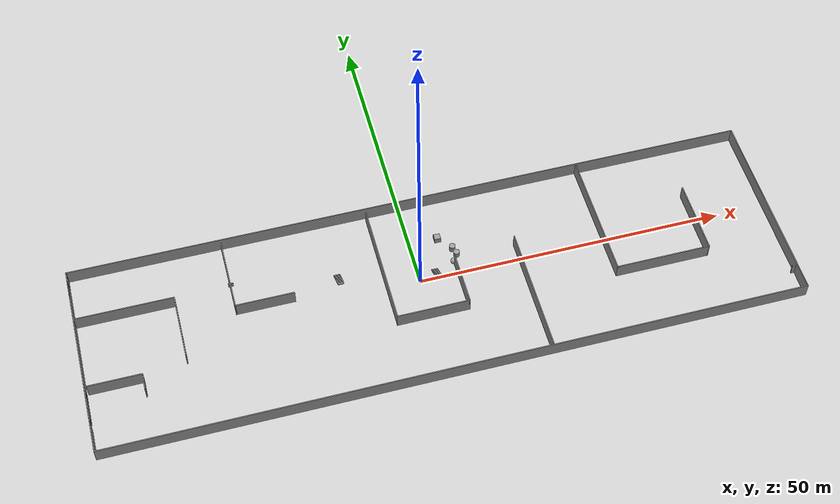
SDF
<sdf version="1.7">
 <world name="default">
  <light name="sun" type="directional">
   <pose>0 0 10 0 -0 0</pose>
   <diffuse>0.8 0.8 0.8 1</diffuse>
   <specular>0.2 0.2 0.2 1</specular>
   <attenuation>
    <range>1000</range>
    <constant>0.9</constant>
    <linear>0.01</linear>
    <quadratic>0.001</quadratic>
   </attenuation>
   <direction>-0.5 0.1 -0.9</direction>
   <spot><inner_angle>0</inner_angle><outer_angle>0</outer_angle><falloff>0</falloff></spot>
  </light>
  <model name="ground_plane">
   <static>1</static>
   <link name="link">
    <collision name="collision">
     <geometry><plane><normal>0 0 1</normal><size>100 100</size></plane></geometry>
     <surface>
      <contact><collide_bitmask>65535</collide_bitmask></contact>
      <friction><ode><mu>100</mu><mu2>50</mu2></ode></friction>
     </surface>
    </collision>
    <visual name="visual">
     <cast_shadows>0</cast_shadows>
     <geometry><plane><normal>0 0 1</normal><size>100 100</size></plane></geometry>
     <material>
      <script><uri>file://media/materials/scripts/gazebo.material</uri><name>Gazebo/Grey</name></script>
     </material>
    </visual>
   </link>
  </model>
  <gravity>0 0 -9.8</gravity>
  <magnetic_field>6e-06 2.3e-05 -4.2e-05</magnetic_field>
  <atmosphere type="adiabatic"/>
  <physics type="ode">
   <max_step_size>0.001</max_step_size>
   <real_time_factor>1</real_time_factor>
   <real_time_update_rate>1000</real_time_update_rate>
  </physics>
  <scene><ambient>0.4 0.4 0.4 1</ambient><background>0.7 0.7 0.7 1</background><shadows>1</shadows></scene>
  <spherical_coordinates>
   <surface_model>EARTH_WGS84</surface_model>
   <latitude_deg>0</latitude_deg>
   <longitude_deg>0</longitude_deg>
   <elevation>0</elevation>
   <heading_deg>0</heading_deg>
  </spherical_coordinates>
  <model name="room1">
   <pose>1.9848 -1.84188 0 0 -0 0</pose>
   <link name="Door_3">
    <collision name="Door_3_Collision">
     <geometry><box><size>0.9 0.17 2</size></box></geometry>
     <pose>0 0 1 0 -0 0</pose>
    </collision>
    <visual name="Door_3_Visual">
     <pose>0 0 1 0 -0 0</pose>
     <geometry><box><size>0.9 0.17 2</size></box></geometry>
     <material>
      <script><uri>file://media/materials/scripts/gazebo.material</uri><name>Gazebo/Grey</name></script>
     </material>
    </visual>
    <pose>55.6122 -11.8671 0 0 -0 0</pose>
   </link>
   <link name="Stairs_3">
    <visual name="Stairs_3_Visual_0">
     <pose>0.729382 3.42545 0.083333 0 -0 0</pose>
     <geometry><box><size>1 0.233333 0.166667</size></box></geometry>
     <material>
      <script><uri>file://media/materials/scripts/gazebo.material</uri><name>Gazebo/Grey</name></script>
      <ambient>1 1 1 1</ambient>
     </material>
     <meta><layer>0</layer></meta>
    </visual>
    <collision name="Stairs_3_Collision_0">
     <geometry><box><size>1 0.233333 0.166667</size></box></geometry>
     <pose>0.729382 3.42545 0.083333 0 -0 0</pose>
    </collision>
    <visual name="Stairs_3_Visual_1">
     <pose>0.729382 3.19211 0.25 0 -0 0</pose>
     <geometry><box><size>1 0.233333 0.166667</size></box></geometry>
     <material>
      <script><uri>file://media/materials/scripts/gazebo.material</uri><name>Gazebo/Grey</name></script>
      <ambient>1 1 1 1</ambient>
     </material>
     <meta><layer>0</layer></meta>
    </visual>
    <collision name="Stairs_3_Collision_1">
     <geometry><box><size>1 0.233333 0.166667</size></box></geometry>
     <pose>0.729382 3.19211 0.25 0 -0 0</pose>
    </collision>
    <visual name="Stairs_3_Visual_2">
     <pose>0.729382 2.95878 0.416667 0 -0 0</pose>
     <geometry><box><size>1 0.233333 0.166667</size></box></geometry>
     <material>
      <script><uri>file://media/materials/scripts/gazebo.material</uri><name>Gazebo/Grey</name></script>
      <ambient>1 1 1 1</ambient>
     </material>
     <meta><layer>0</layer></meta>
    </visual>
    <collision name="Stairs_3_Collision_2">
     <geometry><box><size>1 0.233333 0.166667</size></box></geometry>
     <pose>0.729382 2.95878 0.416667 0 -0 0</pose>
    </collision>
    <visual name="Stairs_3_Visual_3">
     <pose>0.729382 2.72545 0.583333 0 -0 0</pose>
     <geometry><box><size>1 0.233333 0.166667</size></box></geometry>
     <material>
      <script><uri>file://media/materials/scripts/gazebo.material</uri><name>Gazebo/Grey</name></script>
      <ambient>1 1 1 1</ambient>
     </material>
     <meta><layer>0</layer></meta>
    </visual>
    <collision name="Stairs_3_Collision_3">
     <geometry><box><size>1 0.233333 0.166667</size></box></geometry>
     <pose>0.729382 2.72545 0.583333 0 -0 0</pose>
    </collision>
    <visual name="Stairs_3_Visual_4">
     <pose>0.729382 2.49211 0.75 0 -0 0</pose>
     <geometry><box><size>1 0.233333 0.166667</size></box></geometry>
     <material>
      <script><uri>file://media/materials/scripts/gazebo.material</uri><name>Gazebo/Grey</name></script>
      <ambient>1 1 1 1</ambient>
     </material>
     <meta><layer>0</layer></meta>
    </visual>
    <collision name="Stairs_3_Collision_4">
     <geometry><box><size>1 0.233333 0.166667</size></box></geometry>
     <pose>0.729382 2.49211 0.75 0 -0 0</pose>
    </collision>
    <visual name="Stairs_3_Visual_5">
     <pose>0.729382 2.25878 0.916667 0 -0 0</pose>
     <geometry><box><size>1 0.233333 0.166667</size></box></geometry>
     <material>
      <script><uri>file://media/materials/scripts/gazebo.material</uri><name>Gazebo/Grey</name></script>
      <ambient>1 1 1 1</ambient>
     </material>
     <meta><layer>0</layer></meta>
    </visual>
    <collision name="Stairs_3_Collision_5">
     <geometry><box><size>1 0.233333 0.166667</size></box></geometry>
     <pose>0.729382 2.25878 0.916667 0 -0 0</pose>
    </collision>
    <visual name="Stairs_3_Visual_6">
     <pose>0.729382 2.02545 1.08333 0 -0 0</pose>
     <geometry><box><size>1 0.233333 0.166667</size></box></geometry>
     <material>
      <script><uri>file://media/materials/scripts/gazebo.material</uri><name>Gazebo/Grey</name></script>
      <ambient>1 1 1 1</ambient>
     </material>
     <meta><layer>0</layer></meta>
    </visual>
    <collision name="Stairs_3_Collision_6">
     <geometry><box><size>1 0.233333 0.166667</size></box></geometry>
     <pose>0.729382 2.02545 1.08333 0 -0 0</pose>
    </collision>
    <visual name="Stairs_3_Visual_7">
     <pose>0.729382 1.79211 1.25 0 -0 0</pose>
     <geometry><box><size>1 0.233333 0.166667</size></box></geometry>
     <material>
      <script><uri>file://media/materials/scripts/gazebo.material</uri><name>Gazebo/Grey</name></script>
      <ambient>1 1 1 1</ambient>
     </material>
     <meta><layer>0</layer></meta>
    </visual>
    <collision name="Stairs_3_Collision_7">
     <geometry><box><size>1 0.233333 0.166667</size></box></geometry>
     <pose>0.729382 1.79211 1.25 0 -0 0</pose>
    </collision>
    <visual name="Stairs_3_Visual_8">
     <pose>0.729382 1.55878 1.41667 0 -0 0</pose>
     <geometry><box><size>1 0.233333 0.166667</size></box></geometry>
     <material>
      <script><uri>file://media/materials/scripts/gazebo.material</uri><name>Gazebo/Grey</name></script>
      <ambient>1 1 1 1</ambient>
     </material>
     <meta><layer>0</layer></meta>
    </visual>
    <collision name="Stairs_3_Collision_8">
     <geometry><box><size>1 0.233333 0.166667</size></box></geometry>
     <pose>0.729382 1.55878 1.41667 0 -0 0</pose>
    </collision>
    <visual name="Stairs_3_Visual_9">
     <pose>0.729382 1.32545 1.58333 0 -0 0</pose>
     <geometry><box><size>1 0.233333 0.166667</size></box></geometry>
     <material>
      <script><uri>file://media/materials/scripts/gazebo.material</uri><name>Gazebo/Grey</name></script>
      <ambient>1 1 1 1</ambient>
     </material>
     <meta><layer>0</layer></meta>
    </visual>
    <collision name="Stairs_3_Collision_9">
     <geometry><box><size>1 0.233333 0.166667</size></box></geometry>
     <pose>0.729382 1.32545 1.58333 0 -0 0</pose>
    </collision>
    <visual name="Stairs_3_Visual_10">
     <pose>0.729382 1.09211 1.75 0 -0 0</pose>
     <geometry><box><size>1 0.233333 0.166667</size></box></geometry>
     <material>
      <script><uri>file://media/materials/scripts/gazebo.material</uri><name>Gazebo/Grey</name></script>
      <ambient>1 1 1 1</ambient>
     </material>
     <meta><layer>0</layer></meta>
    </visual>
    <collision name="Stairs_3_Collision_10">
     <geometry><box><size>1 0.233333 0.166667</size></box></geometry>
     <pose>0.729382 1.09211 1.75 0 -0 0</pose>
    </collision>
    <visual name="Stairs_3_Visual_11">
     <pose>0.729382 0.85878 1.91667 0 -0 0</pose>
     <geometry><box><size>1 0.233333 0.166667</size></box></geometry>
     <material>
      <script><uri>file://media/materials/scripts/gazebo.material</uri><name>Gazebo/Grey</name></script>
      <ambient>1 1 1 1</ambient>
     </material>
     <meta><layer>0</layer></meta>
    </visual>
    <collision name="Stairs_3_Collision_11">
     <geometry><box><size>1 0.233333 0.166667</size></box></geometry>
     <pose>0.729382 0.85878 1.91667 0 -0 0</pose>
    </collision>
    <visual name="Stairs_3_Visual_12">
     <pose>0.729382 0.625446 2.08333 0 -0 0</pose>
     <geometry><box><size>1 0.233333 0.166667</size></box></geometry>
     <material>
      <script><uri>file://media/materials/scripts/gazebo.material</uri><name>Gazebo/Grey</name></script>
      <ambient>1 1 1 1</ambient>
     </material>
     <meta><layer>0</layer></meta>
    </visual>
    <collision name="Stairs_3_Collision_12">
     <geometry><box><size>1 0.233333 0.166667</size></box></geometry>
     <pose>0.729382 0.625446 2.08333 0 -0 0</pose>
    </collision>
    <visual name="Stairs_3_Visual_13">
     <pose>0.729382 0.392113 2.25 0 -0 0</pose>
     <geometry><box><size>1 0.233333 0.166667</size></box></geometry>
     <material>
      <script><uri>file://media/materials/scripts/gazebo.material</uri><name>Gazebo/Grey</name></script>
      <ambient>1 1 1 1</ambient>
     </material>
     <meta><layer>0</layer></meta>
    </visual>
    <collision name="Stairs_3_Collision_13">
     <geometry><box><size>1 0.233333 0.166667</size></box></geometry>
     <pose>0.729382 0.392113 2.25 0 -0 0</pose>
    </collision>
    <visual name="Stairs_3_Visual_14">
     <pose>0.729382 0.15878 2.41667 0 -0 0</pose>
     <geometry><box><size>1 0.233333 0.166667</size></box></geometry>
     <material>
      <script><uri>file://media/materials/scripts/gazebo.material</uri><name>Gazebo/Grey</name></script>
      <ambient>1 1 1 1</ambient>
     </material>
     <meta><layer>0</layer></meta>
    </visual>
    <collision name="Stairs_3_Collision_14">
     <geometry><box><size>1 0.233333 0.166667</size></box></geometry>
     <pose>0.729382 0.15878 2.41667 0 -0 0</pose>
    </collision>
   </link>
   <link name="Stairs_4">
    <visual name="Stairs_4_Visual_0">
     <pose>-14.5295 6.37878 0.083333 0 -0 0</pose>
     <geometry><box><size>1 0.233333 0.166667</size></box></geometry>
     <material>
      <script><uri>file://media/materials/scripts/gazebo.material</uri><name>Gazebo/Grey</name></script>
      <ambient>1 1 1 1</ambient>
     </material>
     <meta><layer>0</layer></meta>
    </visual>
    <collision name="Stairs_4_Collision_0">
     <geometry><box><size>1 0.233333 0.166667</size></box></geometry>
     <pose>-14.5295 6.37878 0.083333 0 -0 0</pose>
    </collision>
    <visual name="Stairs_4_Visual_1">
     <pose>-14.5295 6.14545 0.25 0 -0 0</pose>
     <geometry><box><size>1 0.233333 0.166667</size></box></geometry>
     <material>
      <script><uri>file://media/materials/scripts/gazebo.material</uri><name>Gazebo/Grey</name></script>
      <ambient>1 1 1 1</ambient>
     </material>
     <meta><layer>0</layer></meta>
    </visual>
    <collision name="Stairs_4_Collision_1">
     <geometry><box><size>1 0.233333 0.166667</size></box></geometry>
     <pose>-14.5295 6.14545 0.25 0 -0 0</pose>
    </collision>
    <visual name="Stairs_4_Visual_2">
     <pose>-14.5295 5.91212 0.416667 0 -0 0</pose>
     <geometry><box><size>1 0.233333 0.166667</size></box></geometry>
     <material>
      <script><uri>file://media/materials/scripts/gazebo.material</uri><name>Gazebo/Grey</name></script>
      <ambient>1 1 1 1</ambient>
     </material>
     <meta><layer>0</layer></meta>
    </visual>
    <collision name="Stairs_4_Collision_2">
     <geometry><box><size>1 0.233333 0.166667</size></box></geometry>
     <pose>-14.5295 5.91212 0.416667 0 -0 0</pose>
    </collision>
    <visual name="Stairs_4_Visual_3">
     <pose>-14.5295 5.67879 0.583333 0 -0 0</pose>
     <geometry><box><size>1 0.233333 0.166667</size></box></geometry>
     <material>
      <script><uri>file://media/materials/scripts/gazebo.material</uri><name>Gazebo/Grey</name></script>
      <ambient>1 1 1 1</ambient>
     </material>
     <meta><layer>0</layer></meta>
    </visual>
    <collision name="Stairs_4_Collision_3">
     <geometry><box><size>1 0.233333 0.166667</size></box></geometry>
     <pose>-14.5295 5.67879 0.583333 0 -0 0</pose>
    </collision>
    <visual name="Stairs_4_Visual_4">
     <pose>-14.5295 5.44545 0.75 0 -0 0</pose>
     <geometry><box><size>1 0.233333 0.166667</size></box></geometry>
     <material>
      <script><uri>file://media/materials/scripts/gazebo.material</uri><name>Gazebo/Grey</name></script>
      <ambient>1 1 1 1</ambient>
     </material>
     <meta><layer>0</layer></meta>
    </visual>
    <collision name="Stairs_4_Collision_4">
     <geometry><box><size>1 0.233333 0.166667</size></box></geometry>
     <pose>-14.5295 5.44545 0.75 0 -0 0</pose>
    </collision>
    <visual name="Stairs_4_Visual_5">
     <pose>-14.5295 5.21212 0.916667 0 -0 0</pose>
     <geometry><box><size>1 0.233333 0.166667</size></box></geometry>
     <material>
      <script><uri>file://media/materials/scripts/gazebo.material</uri><name>Gazebo/Grey</name></script>
      <ambient>1 1 1 1</ambient>
     </material>
     <meta><layer>0</layer></meta>
    </visual>
    <collision name="Stairs_4_Collision_5">
     <geometry><box><size>1 0.233333 0.166667</size></box></geometry>
     <pose>-14.5295 5.21212 0.916667 0 -0 0</pose>
    </collision>
    <visual name="Stairs_4_Visual_6">
     <pose>-14.5295 4.97879 1.08333 0 -0 0</pose>
     <geometry><box><size>1 0.233333 0.166667</size></box></geometry>
     <material>
      <script><uri>file://media/materials/scripts/gazebo.material</uri><name>Gazebo/Grey</name></script>
      <ambient>1 1 1 1</ambient>
     </material>
     <meta><layer>0</layer></meta>
    </visual>
    <collision name="Stairs_4_Collision_6">
     <geometry><box><size>1 0.233333 0.166667</size></box></geometry>
     <pose>-14.5295 4.97879 1.08333 0 -0 0</pose>
    </collision>
    <visual name="Stairs_4_Visual_7">
     <pose>-14.5295 4.74545 1.25 0 -0 0</pose>
     <geometry><box><size>1 0.233333 0.166667</size></box></geometry>
     <material>
      <script><uri>file://media/materials/scripts/gazebo.material</uri><name>Gazebo/Grey</name></script>
      <ambient>1 1 1 1</ambient>
     </material>
     <meta><layer>0</layer></meta>
    </visual>
    <collision name="Stairs_4_Collision_7">
     <geometry><box><size>1 0.233333 0.166667</size></box></geometry>
     <pose>-14.5295 4.74545 1.25 0 -0 0</pose>
    </collision>
    <visual name="Stairs_4_Visual_8">
     <pose>-14.5295 4.51212 1.41667 0 -0 0</pose>
     <geometry><box><size>1 0.233333 0.166667</size></box></geometry>
     <material>
      <script><uri>file://media/materials/scripts/gazebo.material</uri><name>Gazebo/Grey</name></script>
      <ambient>1 1 1 1</ambient>
     </material>
     <meta><layer>0</layer></meta>
    </visual>
    <collision name="Stairs_4_Collision_8">
     <geometry><box><size>1 0.233333 0.166667</size></box></geometry>
     <pose>-14.5295 4.51212 1.41667 0 -0 0</pose>
    </collision>
    <visual name="Stairs_4_Visual_9">
     <pose>-14.5295 4.27879 1.58333 0 -0 0</pose>
     <geometry><box><size>1 0.233333 0.166667</size></box></geometry>
     <material>
      <script><uri>file://media/materials/scripts/gazebo.material</uri><name>Gazebo/Grey</name></script>
      <ambient>1 1 1 1</ambient>
     </material>
     <meta><layer>0</layer></meta>
    </visual>
    <collision name="Stairs_4_Collision_9">
     <geometry><box><size>1 0.233333 0.166667</size></box></geometry>
     <pose>-14.5295 4.27879 1.58333 0 -0 0</pose>
    </collision>
    <visual name="Stairs_4_Visual_10">
     <pose>-14.5295 4.04545 1.75 0 -0 0</pose>
     <geometry><box><size>1 0.233333 0.166667</size></box></geometry>
     <material>
      <script><uri>file://media/materials/scripts/gazebo.material</uri><name>Gazebo/Grey</name></script>
      <ambient>1 1 1 1</ambient>
     </material>
     <meta><layer>0</layer></meta>
    </visual>
    <collision name="Stairs_4_Collision_10">
     <geometry><box><size>1 0.233333 0.166667</size></box></geometry>
     <pose>-14.5295 4.04545 1.75 0 -0 0</pose>
    </collision>
    <visual name="Stairs_4_Visual_11">
     <pose>-14.5295 3.81212 1.91667 0 -0 0</pose>
     <geometry><box><size>1 0.233333 0.166667</size></box></geometry>
     <material>
      <script><uri>file://media/materials/scripts/gazebo.material</uri><name>Gazebo/Grey</name></script>
      <ambient>1 1 1 1</ambient>
     </material>
     <meta><layer>0</layer></meta>
    </visual>
    <collision name="Stairs_4_Collision_11">
     <geometry><box><size>1 0.233333 0.166667</size></box></geometry>
     <pose>-14.5295 3.81212 1.91667 0 -0 0</pose>
    </collision>
    <visual name="Stairs_4_Visual_12">
     <pose>-14.5295 3.57878 2.08333 0 -0 0</pose>
     <geometry><box><size>1 0.233333 0.166667</size></box></geometry>
     <material>
      <script><uri>file://media/materials/scripts/gazebo.material</uri><name>Gazebo/Grey</name></script>
      <ambient>1 1 1 1</ambient>
     </material>
     <meta><layer>0</layer></meta>
    </visual>
    <collision name="Stairs_4_Collision_12">
     <geometry><box><size>1 0.233333 0.166667</size></box></geometry>
     <pose>-14.5295 3.57878 2.08333 0 -0 0</pose>
    </collision>
    <visual name="Stairs_4_Visual_13">
     <pose>-14.5295 3.34545 2.25 0 -0 0</pose>
     <geometry><box><size>1 0.233333 0.166667</size></box></geometry>
     <material>
      <script><uri>file://media/materials/scripts/gazebo.material</uri><name>Gazebo/Grey</name></script>
      <ambient>1 1 1 1</ambient>
     </material>
     <meta><layer>0</layer></meta>
    </visual>
    <collision name="Stairs_4_Collision_13">
     <geometry><box><size>1 0.233333 0.166667</size></box></geometry>
     <pose>-14.5295 3.34545 2.25 0 -0 0</pose>
    </collision>
    <visual name="Stairs_4_Visual_14">
     <pose>-14.5295 3.11212 2.41667 0 -0 0</pose>
     <geometry><box><size>1 0.233333 0.166667</size></box></geometry>
     <material>
      <script><uri>file://media/materials/scripts/gazebo.material</uri><name>Gazebo/Grey</name></script>
      <ambient>1 1 1 1</ambient>
     </material>
     <meta><layer>0</layer></meta>
    </visual>
    <collision name="Stairs_4_Collision_14">
     <geometry><box><size>1 0.233333 0.166667</size></box></geometry>
     <pose>-14.5295 3.11212 2.41667 0 -0 0</pose>
    </collision>
   </link>
   <link name="Wall_11">
    <pose>-55.8 -0.875 0 0 -0 -1.5708</pose>
    <visual name="Wall_11_Visual_0">
     <pose>-5.26429 0 1.25 0 -0 0</pose>
     <geometry><box><size>20.4714 0.15 2.5</size></box></geometry>
     <material>
      <script><uri>file://media/materials/scripts/gazebo.material</uri><name>Gazebo/Grey</name></script>
      <ambient>1 1 1 1</ambient>
     </material>
     <meta><layer>0</layer></meta>
    </visual>
    <collision name="Wall_11_Collision_0">
     <geometry><box><size>20.4714 0.15 2.5</size></box></geometry>
     <pose>-5.26429 0 1.25 0 -0 0</pose>
    </collision>
    <visual name="Wall_11_Visual_1">
     <pose>13.0403 0 1.25 0 -0 0</pose>
     <geometry><box><size>4.91932 0.15 2.5</size></box></geometry>
     <material>
      <script><uri>file://media/materials/scripts/gazebo.material</uri><name>Gazebo/Grey</name></script>
      <ambient>1 1 1 1</ambient>
     </material>
     <meta><layer>0</layer></meta>
    </visual>
    <collision name="Wall_11_Collision_1">
     <geometry><box><size>4.91932 0.15 2.5</size></box></geometry>
     <pose>13.0403 0 1.25 0 -0 0</pose>
    </collision>
    <visual name="Wall_11_Visual_2">
     <pose>7.32605 0 0.25 0 -0 0</pose>
     <geometry><box><size>4.70926 0.15 0.5</size></box></geometry>
     <material>
      <script><uri>file://media/materials/scripts/gazebo.material</uri><name>Gazebo/Grey</name></script>
      <ambient>1 1 1 1</ambient>
     </material>
     <meta><layer>0</layer></meta>
    </visual>
    <collision name="Wall_11_Collision_2">
     <geometry><box><size>4.70926 0.15 0.5</size></box></geometry>
     <pose>7.32605 0 0.25 0 -0 0</pose>
    </collision>
    <visual name="Wall_11_Visual_3">
     <pose>7.72605 0 1.5 0 -0 0</pose>
     <geometry><box><size>3.90926 0.15 2</size></box></geometry>
     <material>
      <script><uri>file://media/materials/scripts/gazebo.material</uri><name>Gazebo/Grey</name></script>
      <ambient>1 1 1 1</ambient>
     </material>
     <meta><layer>0</layer></meta>
    </visual>
    <collision name="Wall_11_Collision_3">
     <geometry><box><size>3.90926 0.15 2</size></box></geometry>
     <pose>7.72605 0 1.5 0 -0 0</pose>
    </collision>
    <visual name="Wall_11_Visual_4">
     <pose>5.37142 0 1.9 0 -0 0</pose>
     <geometry><box><size>0.8 0.15 1.2</size></box></geometry>
     <material>
      <script><uri>file://media/materials/scripts/gazebo.material</uri><name>Gazebo/Grey</name></script>
      <ambient>1 1 1 1</ambient>
     </material>
     <meta><layer>0</layer></meta>
    </visual>
    <collision name="Wall_11_Collision_4">
     <geometry><box><size>0.8 0.15 1.2</size></box></geometry>
     <pose>5.37142 0 1.9 0 -0 0</pose>
    </collision>
    <visual name="Wall_11_Visual_5">
     <pose>10.1307 0 2.25 0 -0 0</pose>
     <geometry><box><size>0.9 0.15 0.5</size></box></geometry>
     <material>
      <script><uri>file://media/materials/scripts/gazebo.material</uri><name>Gazebo/Grey</name></script>
      <ambient>1 1 1 1</ambient>
     </material>
     <meta><layer>0</layer></meta>
    </visual>
    <collision name="Wall_11_Collision_5">
     <geometry><box><size>0.9 0.15 0.5</size></box></geometry>
     <pose>10.1307 0 2.25 0 -0 0</pose>
    </collision>
   </link>
   <link name="Wall_12">
    <collision name="Wall_12_Collision">
     <geometry><box><size>111.75 0.15 2.5</size></box></geometry>
     <pose>0 0 1.25 0 -0 0</pose>
    </collision>
    <visual name="Wall_12_Visual">
     <pose>0 0 1.25 0 -0 0</pose>
     <geometry><box><size>111.75 0.15 2.5</size></box></geometry>
     <material>
      <script><uri>file://media/materials/scripts/gazebo.material</uri><name>Gazebo/Grey</name></script>
      <ambient>1 1 1 1</ambient>
     </material>
     <meta><layer>0</layer></meta>
    </visual>
    <pose>-1e-06 -16.3 0 0 -0 0</pose>
   </link>
   <link name="Wall_13">
    <collision name="Wall_13_Collision">
     <geometry><box><size>32.75 0.15 2.5</size></box></geometry>
     <pose>0 0 1.25 0 -0 0</pose>
    </collision>
    <visual name="Wall_13_Visual">
     <pose>0 0 1.25 0 -0 0</pose>
     <geometry><box><size>32.75 0.15 2.5</size></box></geometry>
     <material>
      <script><uri>file://media/materials/scripts/gazebo.material</uri><name>Gazebo/Grey</name></script>
      <ambient>1 1 1 1</ambient>
     </material>
     <meta><layer>0</layer></meta>
    </visual>
    <pose>55.8 0 0 0 -0 1.5708</pose>
   </link>
   <link name="Wall_14">
    <collision name="Wall_14_Collision">
     <geometry><box><size>111.75 0.15 2.5</size></box></geometry>
     <pose>0 0 1.25 0 -0 0</pose>
    </collision>
    <visual name="Wall_14_Visual">
     <pose>0 0 1.25 0 -0 0</pose>
     <geometry><box><size>111.75 0.15 2.5</size></box></geometry>
     <material>
      <script><uri>file://media/materials/scripts/gazebo.material</uri><name>Gazebo/Grey</name></script>
      <ambient>1 1 1 1</ambient>
     </material>
     <meta><layer>0</layer></meta>
    </visual>
    <pose>-1e-06 16.3 0 0 -0 3.14159</pose>
   </link>
   <link name="Wall_15">
    <collision name="Wall_15_Collision">
     <geometry><box><size>4.75 0.15 2.5</size></box></geometry>
     <pose>0 0 1.25 0 -0 0</pose>
    </collision>
    <visual name="Wall_15_Visual">
     <pose>0 0 1.25 0 -0 0</pose>
     <geometry><box><size>4.75 0.15 2.5</size></box></geometry>
     <material>
      <script><uri>file://media/materials/scripts/gazebo.material</uri><name>Gazebo/Grey</name></script>
      <ambient>1 1 1 1</ambient>
     </material>
     <meta><layer>0</layer></meta>
    </visual>
    <pose>-55.8 14 0 0 -0 -1.5708</pose>
   </link>
   <link name="Wall_17">
    <collision name="Wall_17_Collision">
     <geometry><box><size>21 0.15 2.5</size></box></geometry>
     <pose>0 0 1.25 0 -0 0</pose>
    </collision>
    <visual name="Wall_17_Visual">
     <pose>0 0 1.25 0 -0 0</pose>
     <geometry><box><size>21 0.15 2.5</size></box></geometry>
     <material>
      <script><uri>file://media/materials/scripts/gazebo.material</uri><name>Gazebo/Grey</name></script>
      <ambient>1 1 1 1</ambient>
     </material>
     <meta><layer>0</layer></meta>
    </visual>
    <pose>14.2655 -5.67955 0 0 -0 -1.5708</pose>
   </link>
   <link name="Wall_19">
    <collision name="Wall_19_Collision">
     <geometry><box><size>15.75 0.15 2.5</size></box></geometry>
     <pose>0 0 1.25 0 -0 0</pose>
    </collision>
    <visual name="Wall_19_Visual">
     <pose>0 0 1.25 0 -0 0</pose>
     <geometry><box><size>15.75 0.15 2.5</size></box></geometry>
     <material>
      <script><uri>file://media/materials/scripts/gazebo.material</uri><name>Gazebo/Grey</name></script>
      <ambient>1 1 1 1</ambient>
     </material>
     <meta><layer>0</layer></meta>
    </visual>
    <pose>-47.9532 7.32962 0 0 -0 0</pose>
   </link>
   <link name="Wall_20">
    <collision name="Wall_20_Collision">
     <geometry><box><size>11 0.15 2.5</size></box></geometry>
     <pose>0 0 1.25 0 -0 0</pose>
    </collision>
    <visual name="Wall_20_Visual">
     <pose>0 0 1.25 0 -0 0</pose>
     <geometry><box><size>11 0.15 2.5</size></box></geometry>
     <material>
      <script><uri>file://media/materials/scripts/gazebo.material</uri><name>Gazebo/Grey</name></script>
      <ambient>1 1 1 1</ambient>
     </material>
     <meta><layer>0</layer></meta>
    </visual>
    <pose>-40.1532 1.90462 0 0 -0 -1.5708</pose>
   </link>
   <link name="Wall_22">
    <collision name="Wall_22_Collision">
     <geometry><box><size>12.5 0.15 2.5</size></box></geometry>
     <pose>0 0 1.25 0 -0 0</pose>
    </collision>
    <visual name="Wall_22_Visual">
     <pose>0 0 1.25 0 -0 0</pose>
     <geometry><box><size>12.5 0.15 2.5</size></box></geometry>
     <material>
      <script><uri>file://media/materials/scripts/gazebo.material</uri><name>Gazebo/Grey</name></script>
      <ambient>1 1 1 1</ambient>
     </material>
     <meta><layer>0</layer></meta>
    </visual>
    <pose>-31.2651 9.52241 0 0 -0 -1.5708</pose>
   </link>
   <link name="Wall_23">
    <collision name="Wall_23_Collision">
     <geometry><box><size>9.5 0.15 2.5</size></box></geometry>
     <pose>0 0 1.25 0 -0 0</pose>
    </collision>
    <visual name="Wall_23_Visual">
     <pose>0 0 1.25 0 -0 0</pose>
     <geometry><box><size>9.5 0.15 2.5</size></box></geometry>
     <material>
      <script><uri>file://media/materials/scripts/gazebo.material</uri><name>Gazebo/Grey</name></script>
      <ambient>1 1 1 1</ambient>
     </material>
     <meta><layer>0</layer></meta>
    </visual>
    <pose>-26.5901 3.34741 0 0 -0 0</pose>
   </link>
   <link name="Wall_25">
    <collision name="Wall_25_Collision">
     <geometry><box><size>8.5 0.15 2.5</size></box></geometry>
     <pose>0 0 1.25 0 -0 0</pose>
    </collision>
    <visual name="Wall_25_Visual">
     <pose>0 0 1.25 0 -0 0</pose>
     <geometry><box><size>8.5 0.15 2.5</size></box></geometry>
     <material>
      <script><uri>file://media/materials/scripts/gazebo.material</uri><name>Gazebo/Grey</name></script>
      <ambient>1 1 1 1</ambient>
     </material>
     <meta><layer>0</layer></meta>
    </visual>
    <pose>-51.209 -5.09901 0 0 -0 0</pose>
   </link>
   <link name="Wall_26">
    <collision name="Wall_26_Collision">
     <geometry><box><size>2.75 0.15 2.5</size></box></geometry>
     <pose>0 0 1.25 0 -0 0</pose>
    </collision>
    <visual name="Wall_26_Visual">
     <pose>0 0 1.25 0 -0 0</pose>
     <geometry><box><size>2.75 0.15 2.5</size></box></geometry>
     <material>
      <script><uri>file://media/materials/scripts/gazebo.material</uri><name>Gazebo/Grey</name></script>
      <ambient>1 1 1 1</ambient>
     </material>
     <meta><layer>0</layer></meta>
    </visual>
    <pose>-47.034 -6.39901 0 0 -0 -1.5708</pose>
   </link>
   <link name="Wall_28">
    <collision name="Wall_28_Collision">
     <geometry><box><size>20.75 0.15 2.5</size></box></geometry>
     <pose>0 0 1.25 0 -0 0</pose>
    </collision>
    <visual name="Wall_28_Visual">
     <pose>0 0 1.25 0 -0 0</pose>
     <geometry><box><size>20.75 0.15 2.5</size></box></geometry>
     <material>
      <script><uri>file://media/materials/scripts/gazebo.material</uri><name>Gazebo/Grey</name></script>
      <ambient>1 1 1 1</ambient>
     </material>
     <meta><layer>0</layer></meta>
    </visual>
    <pose>-7.51535 5.1513 0 0 -0 -1.5708</pose>
   </link>
   <link name="Wall_29">
    <collision name="Wall_29_Collision">
     <geometry><box><size>11.75 0.15 2.5</size></box></geometry>
     <pose>0 0 1.25 0 -0 0</pose>
    </collision>
    <visual name="Wall_29_Visual">
     <pose>0 0 1.25 0 -0 0</pose>
     <geometry><box><size>11.75 0.15 2.5</size></box></geometry>
     <material>
      <script><uri>file://media/materials/scripts/gazebo.material</uri><name>Gazebo/Grey</name></script>
      <ambient>1 1 1 1</ambient>
     </material>
     <meta><layer>0</layer></meta>
    </visual>
    <pose>-1.71535 -5.1487 0 0 -0 0</pose>
   </link>
   <link name="Wall_30">
    <collision name="Wall_30_Collision">
     <geometry><box><size>8.75 0.15 2.5</size></box></geometry>
     <pose>0 0 1.25 0 -0 0</pose>
    </collision>
    <visual name="Wall_30_Visual">
     <pose>0 0 1.25 0 -0 0</pose>
     <geometry><box><size>8.75 0.15 2.5</size></box></geometry>
     <material>
      <script><uri>file://media/materials/scripts/gazebo.material</uri><name>Gazebo/Grey</name></script>
      <ambient>1 1 1 1</ambient>
     </material>
     <meta><layer>0</layer></meta>
    </visual>
    <pose>4.08465 -0.848698 0 0 -0 1.5708</pose>
   </link>
   <link name="Wall_32">
    <collision name="Wall_32_Collision">
     <geometry><box><size>21.5 0.15 2.5</size></box></geometry>
     <pose>0 0 1.25 0 -0 0</pose>
    </collision>
    <visual name="Wall_32_Visual">
     <pose>0 0 1.25 0 -0 0</pose>
     <geometry><box><size>21.5 0.15 2.5</size></box></geometry>
     <material>
      <script><uri>file://media/materials/scripts/gazebo.material</uri><name>Gazebo/Grey</name></script>
      <ambient>1 1 1 1</ambient>
     </material>
     <meta><layer>0</layer></meta>
    </visual>
    <pose>28.2939 5.51464 0 0 -0 -1.5708</pose>
   </link>
   <link name="Wall_33">
    <collision name="Wall_33_Collision">
     <geometry><box><size>15.5 0.15 2.5</size></box></geometry>
     <pose>0 0 1.25 0 -0 0</pose>
    </collision>
    <visual name="Wall_33_Visual">
     <pose>0 0 1.25 0 -0 0</pose>
     <geometry><box><size>15.5 0.15 2.5</size></box></geometry>
     <material>
      <script><uri>file://media/materials/scripts/gazebo.material</uri><name>Gazebo/Grey</name></script>
      <ambient>1 1 1 1</ambient>
     </material>
     <meta><layer>0</layer></meta>
    </visual>
    <pose>35.9689 -5.16036 0 0 -0 0</pose>
   </link>
   <link name="Wall_34">
    <collision name="Wall_34_Collision">
     <geometry><box><size>12.25 0.15 2.5</size></box></geometry>
     <pose>0 0 1.25 0 -0 0</pose>
    </collision>
    <visual name="Wall_34_Visual">
     <pose>0 0 1.25 0 -0 0</pose>
     <geometry><box><size>12.25 0.15 2.5</size></box></geometry>
     <material>
      <script><uri>file://media/materials/scripts/gazebo.material</uri><name>Gazebo/Grey</name></script>
      <ambient>1 1 1 1</ambient>
     </material>
     <meta><layer>0</layer></meta>
    </visual>
    <pose>43.6439 0.889636 0 0 -0 1.5708</pose>
   </link>
   <link name="Window_5">
    <collision name="Window_5_Collision">
     <geometry><box><size>0.8 0.17 0.8</size></box></geometry>
     <pose>0 0 0.4 0 -0 0</pose>
    </collision>
    <visual name="Window_5_Visual">
     <pose>0 0 0.4 0 -0 0</pose>
     <geometry><box><size>0.8 0.17 0.8</size></box></geometry>
     <material>
      <script><uri>file://media/materials/scripts/gazebo.material</uri><name>Gazebo/Grey</name></script>
     </material>
    </visual>
    <pose>-31.1421 8.43712 0.5 0 -0 0</pose>
   </link>
   <static>1</static>
  </model>
  <model name="unit_cylinder">
   <pose>6.49434 4.74254 0.499992 -3e-06 3e-06 0</pose>
   <link name="link">
    <inertial>
     <mass>1</mass>
     <inertia><ixx>0.145833</ixx><ixy>0</ixy><ixz>0</ixz><iyy>0.145833</iyy><iyz>0</iyz><izz>0.125</izz></inertia>
    </inertial>
    <collision name="collision">
     <geometry><cylinder><radius>0.5</radius><length>1</length></cylinder></geometry>
    </collision>
    <visual name="visual">
     <geometry><cylinder><radius>0.5</radius><length>1</length></cylinder></geometry>
     <material>
      <script><name>Gazebo/Grey</name><uri>file://media/materials/scripts/gazebo.material</uri></script>
     </material>
    </visual>
   </link>
  </model>
  <model name="unit_box">
   <pose>4.61101 7.14558 0.499995 -1e-05 -0 -0</pose>
   <link name="link">
    <inertial>
     <mass>1</mass>
     <inertia>
      <ixx>0.166667</ixx>
      <ixy>0</ixy>
      <ixz>0</ixz>
      <iyy>0.166667</iyy>
      <iyz>0</iyz>
      <izz>0.166667</izz>
     </inertia>
    </inertial>
    <collision name="collision"><geometry><box><size>1 1 1</size></box></geometry></collision>
    <visual name="visual">
     <geometry><box><size>1 1 1</size></box></geometry>
     <material>
      <script><name>Gazebo/Grey</name><uri>file://media/materials/scripts/gazebo.material</uri></script>
     </material>
    </visual>
   </link>
  </model>
  <model name="unit_cylinder_0">
   <pose>6.83789 3.47486 0.499997 3e-06 -4e-06 -0.001113</pose>
   <link name="link">
    <inertial>
     <mass>1</mass>
     <inertia><ixx>0.145833</ixx><ixy>0</ixy><ixz>0</ixz><iyy>0.145833</iyy><iyz>0</iyz><izz>0.125</izz></inertia>
    </inertial>
    <collision name="collision">
     <geometry><cylinder><radius>0.5</radius><length>1</length></cylinder></geometry>
    </collision>
    <visual name="visual">
     <geometry><cylinder><radius>0.5</radius><length>1</length></cylinder></geometry>
     <material>
      <script><name>Gazebo/Grey</name><uri>file://media/materials/scripts/gazebo.material</uri></script>
     </material>
    </visual>
   </link>
  </model>
  <model name="unit_sphere">
   <pose>6.02925 2.19376 0.5 0.09273 -0.142889 0.053631</pose>
   <link name="link">
    <inertial>
     <mass>1</mass>
     <inertia><ixx>0.1</ixx><ixy>0</ixy><ixz>0</ixz><iyy>0.1</iyy><iyz>0</iyz><izz>0.1</izz></inertia>
    </inertial>
    <collision name="collision"><geometry><sphere><radius>0.5</radius></sphere></geometry></collision>
    <visual name="visual">
     <geometry><sphere><radius>0.5</radius></sphere></geometry>
     <material>
      <script><name>Gazebo/Grey</name><uri>file://media/materials/scripts/gazebo.material</uri></script>
     </material>
    </visual>
   </link>
  </model>
 </world>
</sdf>
